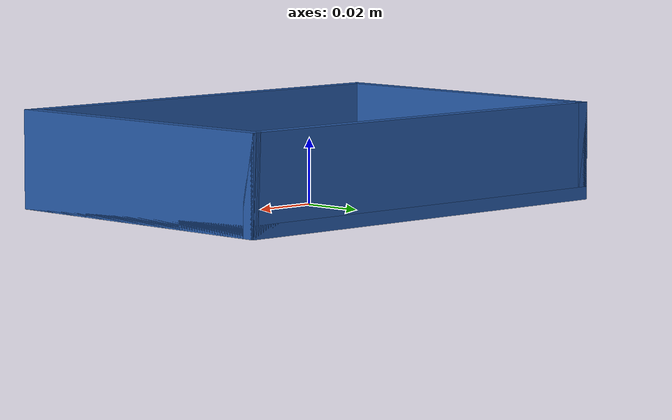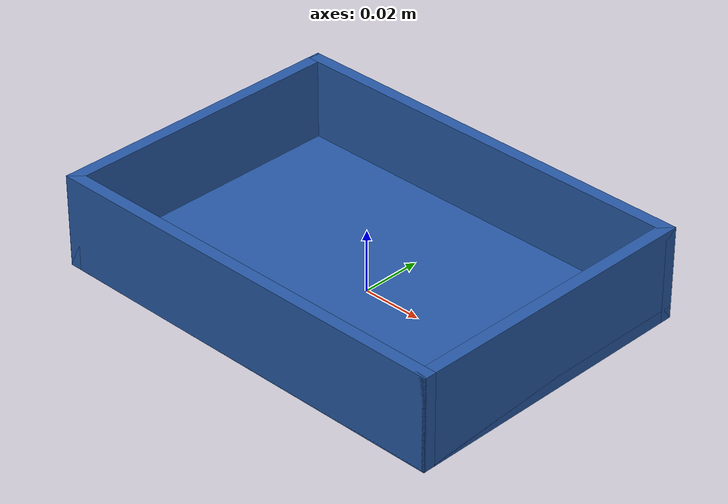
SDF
<?xml version="1.0"?>
<!--
  Parts tray (peghole workcell only): an open tray that holds the spare pegs.
  Static. Origin at the bottom face centre.
-->
<sdf version="1.9">
  <model name="parts_tray">
    <static>true</static>
    <link name="parts_tray_link">
      <inertial>
        <mass>0.1</mass>
        <inertia>
          <ixx>1e-4</ixx>
          <iyy>1e-4</iyy>
          <izz>1e-4</izz>
          <ixy>0</ixy>
          <ixz>0</ixz>
          <iyz>0</iyz>
        </inertia>
      </inertial>

      <!-- floor -->
      <visual name="floor_visual">
        <pose>0 0 0.002 0 0 0</pose>
        <geometry><box><size>0.14 0.10 0.004</size></box></geometry>
        <material>
          <ambient>0.15 0.35 0.65 1.0</ambient>
          <diffuse>0.15 0.35 0.65 1.0</diffuse>
        </material>
      </visual>
      <collision name="floor_collision">
        <pose>0 0 0.002 0 0 0</pose>
        <geometry><box><size>0.14 0.10 0.004</size></box></geometry>
      </collision>

      <!-- +x wall -->
      <visual name="wall_px_visual">
        <pose>0.068 0 0.015 0 0 0</pose>
        <geometry><box><size>0.004 0.10 0.03</size></box></geometry>
        <material>
          <ambient>0.15 0.35 0.65 1.0</ambient>
          <diffuse>0.15 0.35 0.65 1.0</diffuse>
        </material>
      </visual>
      <collision name="wall_px_collision">
        <pose>0.068 0 0.015 0 0 0</pose>
        <geometry><box><size>0.004 0.10 0.03</size></box></geometry>
      </collision>

      <!-- -x wall -->
      <visual name="wall_nx_visual">
        <pose>-0.068 0 0.015 0 0 0</pose>
        <geometry><box><size>0.004 0.10 0.03</size></box></geometry>
        <material>
          <ambient>0.15 0.35 0.65 1.0</ambient>
          <diffuse>0.15 0.35 0.65 1.0</diffuse>
        </material>
      </visual>
      <collision name="wall_nx_collision">
        <pose>-0.068 0 0.015 0 0 0</pose>
        <geometry><box><size>0.004 0.10 0.03</size></box></geometry>
      </collision>

      <!-- +y wall -->
      <visual name="wall_py_visual">
        <pose>0 0.048 0.015 0 0 0</pose>
        <geometry><box><size>0.14 0.004 0.03</size></box></geometry>
        <material>
          <ambient>0.15 0.35 0.65 1.0</ambient>
          <diffuse>0.15 0.35 0.65 1.0</diffuse>
        </material>
      </visual>
      <collision name="wall_py_collision">
        <pose>0 0.048 0.015 0 0 0</pose>
        <geometry><box><size>0.14 0.004 0.03</size></box></geometry>
      </collision>

      <!-- -y wall -->
      <visual name="wall_ny_visual">
        <pose>0 -0.048 0.015 0 0 0</pose>
        <geometry><box><size>0.14 0.004 0.03</size></box></geometry>
        <material>
          <ambient>0.15 0.35 0.65 1.0</ambient>
          <diffuse>0.15 0.35 0.65 1.0</diffuse>
        </material>
      </visual>
      <collision name="wall_ny_collision">
        <pose>0 -0.048 0.015 0 0 0</pose>
        <geometry><box><size>0.14 0.004 0.03</size></box></geometry>
      </collision>
    </link>
  </model>
</sdf>
